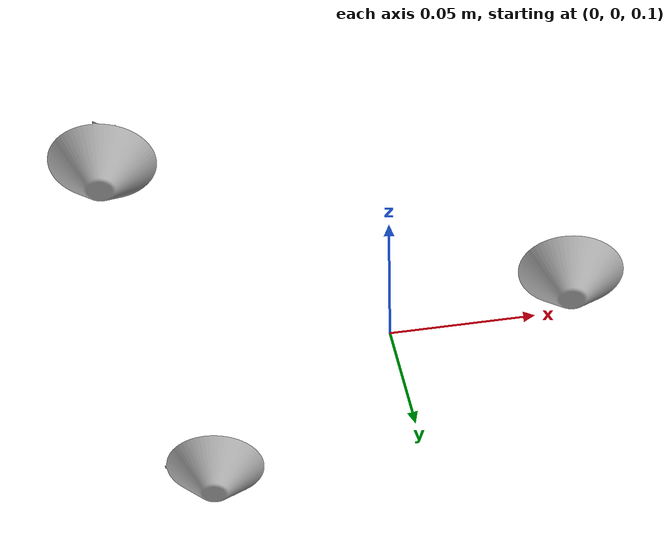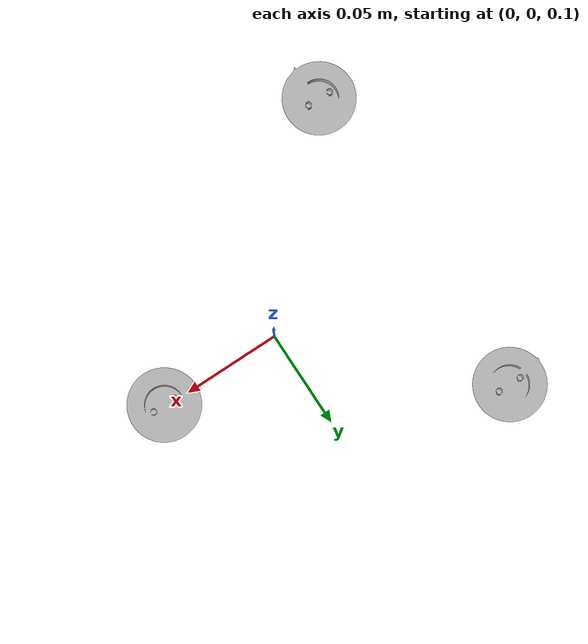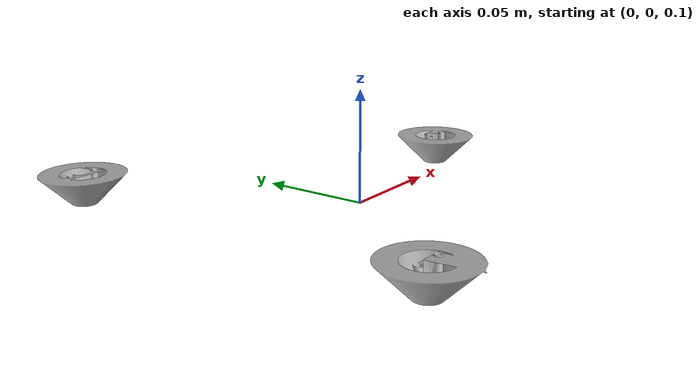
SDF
<?xml version="1.0" ?>
<sdf version="1.6">
  <model name="CssdTray">
    <static>false</static>
    <link name="tray">
      <pose> 0 0 0 0 0 3.14 </pose>
       <inertial>
         <!-- tentative mass -->
        <mass>5.0</mass>
        <pose>0 0 -0.01 0 0 0</pose>
        <inertia>
          <ixx>0.2026</ixx>
          <ixy>0</ixy>
          <ixz>0</ixz>
          <iyy>0.206</iyy>
          <iyz>0</iyz>
          <izz>0.255</izz>
        </inertia>
      </inertial>

      <!-- Extents: (+/- 0.15, +/- 0.175, [0.058, 0.06]),  -->
      <collision name="tray floor">
        <pose> 0.0  0.0  0.06  0.0  0.0  0.0</pose>
        <geometry>
          <box>
            <size>0.30 0.35 0.004</size>
          </box>
        </geometry>
        <surface>
          <contact>
            <ode>
              <kp>1000000.0</kp>
              <kd>1.0</kd>
              <mu1>0.8</mu1>
              <mu2>0.8</mu2>
              <maxVel>0.0</maxVel>
              <minDepth>0.001</minDepth>
            </ode>
          </contact>
        </surface>
      </collision>
      <collision name="tray pegs">
        <geometry>
          <mesh>
            <scale>1 1 1</scale>
            <uri>model://CssdTray/meshes/tray_pegs.stl</uri>
          </mesh>
        </geometry>
      </collision>

      <!-- Center Bottom: (0.128, 0.153, 0.01) -->
      <!-- radius: 0.015 -->
      <!-- height: 0.048-->
      <collision name="front left leg">
        <pose>0.128 0.153 0.034 0 0 0</pose>
        <geometry>
          <cylinder>
            <radius>0.015</radius>
            <length>0.048</length>
          </cylinder>
        </geometry>
      </collision>
      <collision name="front right leg">
        <pose>-0.128 0.153 0.034 0 0 0</pose>
        <geometry>
          <cylinder>
            <radius>0.015</radius>
            <length>0.048</length>
          </cylinder>
        </geometry>
      </collision>
      <collision name="back left leg">
        <pose>0.128 -0.153 0.034 0 0 0</pose>
        <geometry>
          <cylinder>
            <radius>0.015</radius>
            <length>0.048</length>
          </cylinder>
        </geometry>
      </collision>
      <collision name="back right leg">
        <pose>-0.128 -0.153 0.034 0 0 0</pose>
        <geometry>
          <cylinder>
            <radius>0.015</radius>
            <length>0.048</length>
          </cylinder>
        </geometry>
      </collision>

      <visual name='visual'>
        <geometry>
          <mesh>
            <scale>1 1 1</scale>
            <uri>model://CssdTray/meshes/Tray_Assem_Locating_Stand-off.STL</uri>
          </mesh>
        </geometry>
      </visual>
    </link>
  </model>
</sdf>
